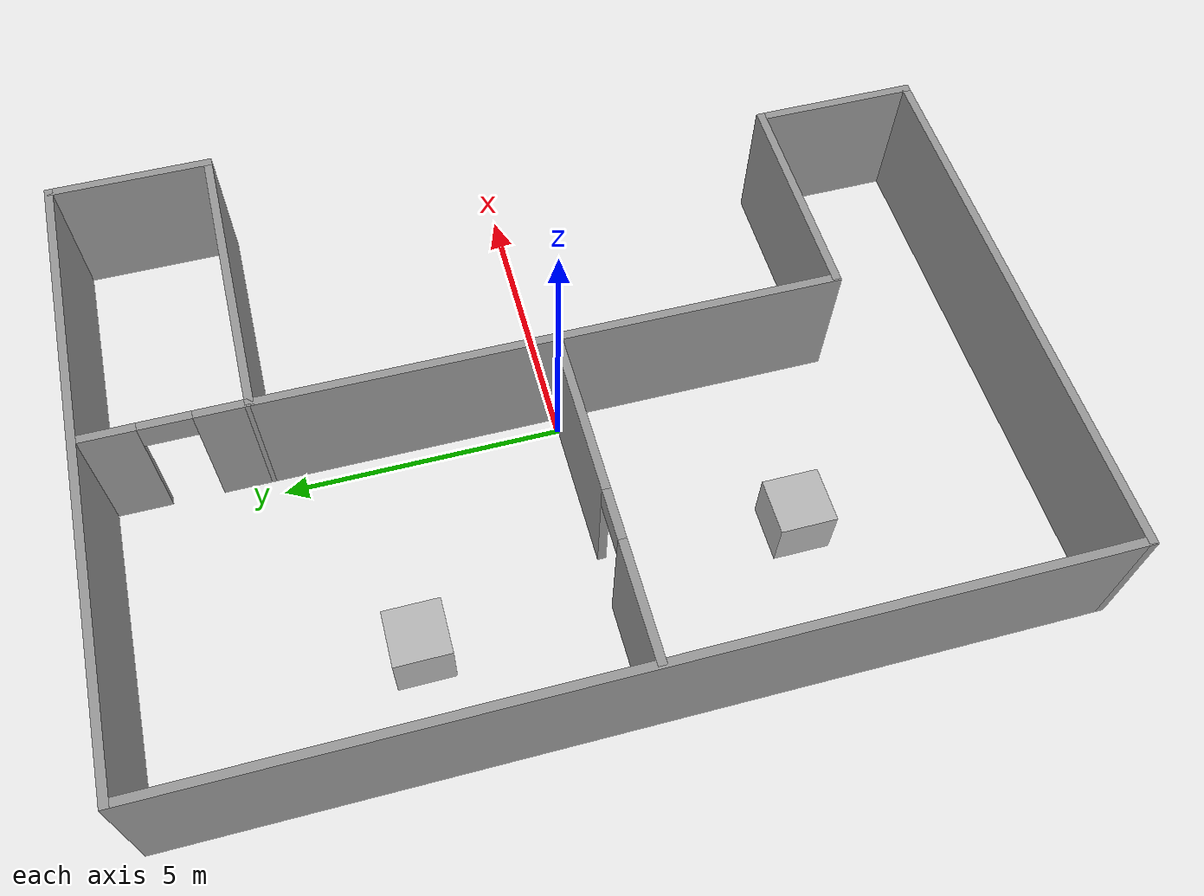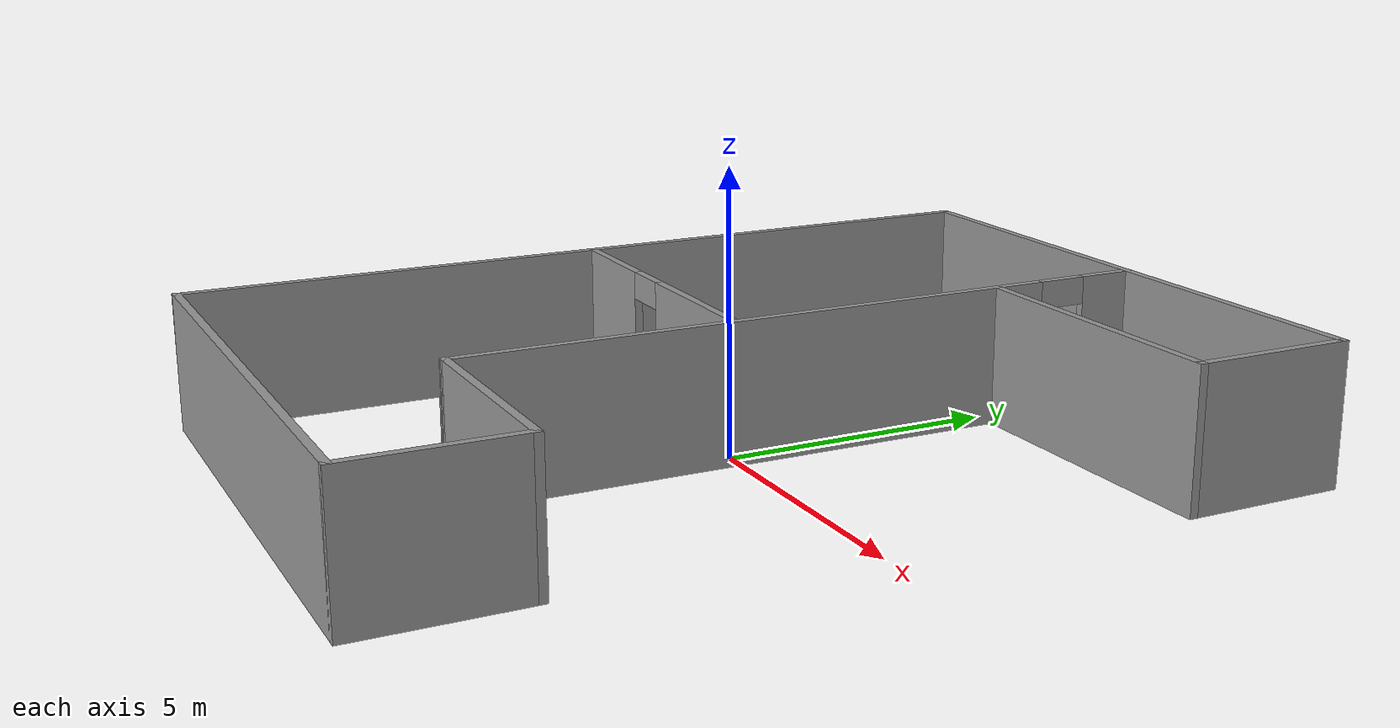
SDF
<sdf version="1.7">
 <world name="default">
  <light name="sun" type="directional">
   <pose>0 0 10 0 -0 0</pose>
   <diffuse>0.8 0.8 0.8 1</diffuse>
   <specular>0.2 0.2 0.2 1</specular>
   <direction>-0.5 0.1 -0.9</direction>
   <attenuation><range>10</range></attenuation>
   <spot><inner_angle>0</inner_angle><outer_angle>0</outer_angle><falloff>0</falloff></spot>
  </light>
  <model name="ground_plane">
   <pose>0 0 -10140.4 0 -0 0</pose>
   <static>0</static>
   <link name="link">
    <collision name="collision">
     <geometry><plane><normal>0 0 1</normal><size>50 50</size></plane></geometry>
    </collision>
    <visual name="visual"><geometry><plane><normal>0 0 1</normal><size>50 50</size></plane></geometry></visual>
    <inertial>
     <inertia><ixx>1</ixx><ixy>0</ixy><ixz>0</ixz><iyy>1</iyy><iyz>0</iyz><izz>1</izz></inertia>
     <mass>1</mass>
    </inertial>
   </link>
  </model>
  <model name="House">
   <pose>0.030994 0.032104 0 0 -0 0</pose>
   <link name="Wall_0">
    <collision name="Wall_0_Collision">
     <geometry><box><size>16 0.15 2.5</size></box></geometry>
     <pose>0 0 1.25 0 -0 0</pose>
    </collision>
    <visual name="Wall_0_Visual">
     <pose>0 0 1.25 0 -0 0</pose>
     <geometry><box><size>16 0.15 2.5</size></box></geometry>
     <material>
      <script><uri>file://media/materials/scripts/gazebo.material</uri><name>Gazebo/Grey</name></script>
      <ambient>1 1 1 1</ambient>
     </material>
     <meta><layer>0</layer></meta>
    </visual>
    <pose>-5.675 -0 0 0 -0 1.5708</pose>
   </link>
   <link name="Wall_1">
    <collision name="Wall_1_Collision">
     <geometry><box><size>11.5 0.15 2.5</size></box></geometry>
     <pose>0 0 1.25 0 -0 0</pose>
    </collision>
    <visual name="Wall_1_Visual">
     <pose>0 0 1.25 0 -0 0</pose>
     <geometry><box><size>11.5 0.15 2.5</size></box></geometry>
     <material>
      <script><uri>file://media/materials/scripts/gazebo.material</uri><name>Gazebo/Grey</name></script>
      <ambient>1 1 1 1</ambient>
     </material>
     <meta><layer>0</layer></meta>
    </visual>
    <pose>0 7.925 0 0 -0 0</pose>
   </link>
   <link name="Wall_10">
    <pose>-2.70622 -0.098323 0 0 -0 0</pose>
    <visual name="Wall_10_Visual_0">
     <pose>-1.94156 0 1.25 0 -0 0</pose>
     <geometry><box><size>2.11688 0.15 2.5</size></box></geometry>
     <material>
      <script><uri>file://media/materials/scripts/gazebo.material</uri><name>Gazebo/Grey</name></script>
      <ambient>1 1 1 1</ambient>
     </material>
     <meta><layer>0</layer></meta>
    </visual>
    <collision name="Wall_10_Collision_0">
     <geometry><box><size>2.11688 0.15 2.5</size></box></geometry>
     <pose>-1.94156 0 1.25 0 -0 0</pose>
    </collision>
    <visual name="Wall_10_Visual_1">
     <pose>1.50844 0 1.25 0 -0 0</pose>
     <geometry><box><size>2.98312 0.15 2.5</size></box></geometry>
     <material>
      <script><uri>file://media/materials/scripts/gazebo.material</uri><name>Gazebo/Grey</name></script>
      <ambient>1 1 1 1</ambient>
     </material>
     <meta><layer>0</layer></meta>
    </visual>
    <collision name="Wall_10_Collision_1">
     <geometry><box><size>2.98312 0.15 2.5</size></box></geometry>
     <pose>1.50844 0 1.25 0 -0 0</pose>
    </collision>
    <visual name="Wall_10_Visual_2">
     <pose>-0.433121 0 2.25 0 -0 0</pose>
     <geometry><box><size>0.9 0.15 0.5</size></box></geometry>
     <material>
      <script><uri>file://media/materials/scripts/gazebo.material</uri><name>Gazebo/Grey</name></script>
      <ambient>1 1 1 1</ambient>
     </material>
     <meta><layer>0</layer></meta>
    </visual>
    <collision name="Wall_10_Collision_2">
     <geometry><box><size>0.9 0.15 0.5</size></box></geometry>
     <pose>-0.433121 0 2.25 0 -0 0</pose>
    </collision>
   </link>
   <link name="Wall_12">
    <pose>0.325 6.5 0 0 -0 1.5708</pose>
    <visual name="Wall_12_Visual_0">
     <pose>-1.00267 0 1.25 0 -0 0</pose>
     <geometry><box><size>0.994649 0.15 2.5</size></box></geometry>
     <material>
      <script><uri>file://media/materials/scripts/gazebo.material</uri><name>Gazebo/Grey</name></script>
      <ambient>1 1 1 1</ambient>
     </material>
     <meta><layer>0</layer></meta>
    </visual>
    <collision name="Wall_12_Collision_0">
     <geometry><box><size>0.994649 0.15 2.5</size></box></geometry>
     <pose>-1.00267 0 1.25 0 -0 0</pose>
    </collision>
    <visual name="Wall_12_Visual_1">
     <pose>0.947325 0 1.25 0 -0 0</pose>
     <geometry><box><size>1.10535 0.15 2.5</size></box></geometry>
     <material>
      <script><uri>file://media/materials/scripts/gazebo.material</uri><name>Gazebo/Grey</name></script>
      <ambient>1 1 1 1</ambient>
     </material>
     <meta><layer>0</layer></meta>
    </visual>
    <collision name="Wall_12_Collision_1">
     <geometry><box><size>1.10535 0.15 2.5</size></box></geometry>
     <pose>0.947325 0 1.25 0 -0 0</pose>
    </collision>
    <visual name="Wall_12_Visual_2">
     <pose>-0.055351 0 2.25 0 -0 0</pose>
     <geometry><box><size>0.9 0.15 0.5</size></box></geometry>
     <material>
      <script><uri>file://media/materials/scripts/gazebo.material</uri><name>Gazebo/Grey</name></script>
      <ambient>1 1 1 1</ambient>
     </material>
     <meta><layer>0</layer></meta>
    </visual>
    <collision name="Wall_12_Collision_2">
     <geometry><box><size>0.9 0.15 0.5</size></box></geometry>
     <pose>-0.055351 0 2.25 0 -0 0</pose>
    </collision>
   </link>
   <link name="Wall_2">
    <collision name="Wall_2_Collision">
     <geometry><box><size>3 0.15 2.5</size></box></geometry>
     <pose>0 0 1.25 0 -0 0</pose>
    </collision>
    <visual name="Wall_2_Visual">
     <pose>0 0 1.25 0 -0 0</pose>
     <geometry><box><size>3 0.15 2.5</size></box></geometry>
     <material>
      <script><uri>file://media/materials/scripts/gazebo.material</uri><name>Gazebo/Grey</name></script>
      <ambient>1 1 1 1</ambient>
     </material>
     <meta><layer>0</layer></meta>
    </visual>
    <pose>5.675 6.5 0 0 -0 -1.5708</pose>
   </link>
   <link name="Wall_3">
    <collision name="Wall_3_Collision">
     <geometry><box><size>5.5 0.15 2.5</size></box></geometry>
     <pose>0 0 1.25 0 -0 0</pose>
    </collision>
    <visual name="Wall_3_Visual">
     <pose>0 0 1.25 0 -0 0</pose>
     <geometry><box><size>5.5 0.15 2.5</size></box></geometry>
     <material>
      <script><uri>file://media/materials/scripts/gazebo.material</uri><name>Gazebo/Grey</name></script>
      <ambient>1 1 1 1</ambient>
     </material>
     <meta><layer>0</layer></meta>
    </visual>
    <pose>3 5.075 0 0 -0 3.14159</pose>
   </link>
   <link name="Wall_4">
    <collision name="Wall_4_Collision">
     <geometry><box><size>10.2806 0.15 2.5</size></box></geometry>
     <pose>0 0 1.25 0 -0 0</pose>
    </collision>
    <visual name="Wall_4_Visual">
     <pose>0 0 1.25 0 -0 0</pose>
     <geometry><box><size>10.2806 0.15 2.5</size></box></geometry>
     <material>
      <script><uri>file://media/materials/scripts/gazebo.material</uri><name>Gazebo/Grey</name></script>
      <ambient>1 1 1 1</ambient>
     </material>
     <meta><layer>0</layer></meta>
    </visual>
    <pose>0.309705 0.009705 0 0 -0 -1.57382</pose>
   </link>
   <link name="Wall_5">
    <collision name="Wall_5_Collision">
     <geometry><box><size>4 0.15 2.5</size></box></geometry>
     <pose>0 0 1.25 0 -0 0</pose>
    </collision>
    <visual name="Wall_5_Visual">
     <pose>0 0 1.25 0 -0 0</pose>
     <geometry><box><size>4 0.15 2.5</size></box></geometry>
     <material>
      <script><uri>file://media/materials/scripts/gazebo.material</uri><name>Gazebo/Grey</name></script>
      <ambient>1 1 1 1</ambient>
     </material>
     <meta><layer>0</layer></meta>
    </visual>
    <pose>2.25 -5.05559 0 0 -0 0</pose>
   </link>
   <link name="Wall_7">
    <collision name="Wall_7_Collision">
     <geometry><box><size>10 0.15 2.5</size></box></geometry>
     <pose>0 0 1.25 0 -0 0</pose>
    </collision>
    <visual name="Wall_7_Visual">
     <pose>0 0 1.25 0 -0 0</pose>
     <geometry><box><size>10 0.15 2.5</size></box></geometry>
     <material>
      <script><uri>file://media/materials/scripts/gazebo.material</uri><name>Gazebo/Grey</name></script>
      <ambient>1 1 1 1</ambient>
     </material>
     <meta><layer>0</layer></meta>
    </visual>
    <pose>-0.75 -7.925 0 0 -0 0</pose>
   </link>
   <link name="Wall_8">
    <collision name="Wall_8_Collision">
     <geometry><box><size>3 0.15 2.5</size></box></geometry>
     <pose>0 0 1.25 0 -0 0</pose>
    </collision>
    <visual name="Wall_8_Visual">
     <pose>0 0 1.25 0 -0 0</pose>
     <geometry><box><size>3 0.15 2.5</size></box></geometry>
     <material>
      <script><uri>file://media/materials/scripts/gazebo.material</uri><name>Gazebo/Grey</name></script>
      <ambient>1 1 1 1</ambient>
     </material>
     <meta><layer>0</layer></meta>
    </visual>
    <pose>4.175 -6.5 0 0 -0 1.5708</pose>
   </link>
   <static>1</static>
  </model>
  <model name="moving_box">
   <static>0</static>
   <pose>-3.5 3.28461 0.25 -1e-06 1e-06 -1e-06</pose>
   <link name="link">
    <inertial>
     <mass>1</mass>
     <inertia><ixx>1</ixx><ixy>0</ixy><ixz>0</ixz><iyy>1</iyy><iyz>0</iyz><izz>1</izz></inertia>
    </inertial>
    <collision name="collision"><geometry><box><size>0.5 0.5 0.5</size></box></geometry></collision>
    <visual name="visual"><geometry><box><size>1 1 1</size></box></geometry></visual>
   </link>
   <plugin name="MoveHorizontal" filename="libMoveHorizontal.so"/>
  </model>
  <model name="moving_box_2">
   <static>0</static>
   <pose>-2.80385 -3.5 0.250001 2e-06 0 -1e-06</pose>
   <link name="link">
    <inertial>
     <mass>1</mass>
     <inertia><ixx>1</ixx><ixy>0</ixy><ixz>0</ixz><iyy>1</iyy><iyz>0</iyz><izz>1</izz></inertia>
    </inertial>
    <collision name="collision"><geometry><box><size>0.5 0.5 0.5</size></box></geometry></collision>
    <visual name="visual"><geometry><box><size>1 1 1</size></box></geometry></visual>
   </link>
   <plugin name="MoveVertical" filename="libMoveVertical.so"/>
  </model>
  <physics type="ode">
   <real_time_update_rate>1000</real_time_update_rate>
   <max_step_size>0.001</max_step_size>
   <real_time_factor>1</real_time_factor>
  </physics>
  <gravity>0 0 -9.8</gravity>
  <magnetic_field>6e-06 2.3e-05 -4.2e-05</magnetic_field>
  <atmosphere type="adiabatic"/>
  <scene><ambient>0.4 0.4 0.4 1</ambient><background>0.7 0.7 0.7 1</background><shadows>1</shadows></scene>
  <audio><device>default</device></audio>
  <spherical_coordinates>
   <surface_model>EARTH_WGS84</surface_model>
   <latitude_deg>0</latitude_deg>
   <longitude_deg>0</longitude_deg>
   <elevation>0</elevation>
   <heading_deg>0</heading_deg>
  </spherical_coordinates>
 </world>
</sdf>
